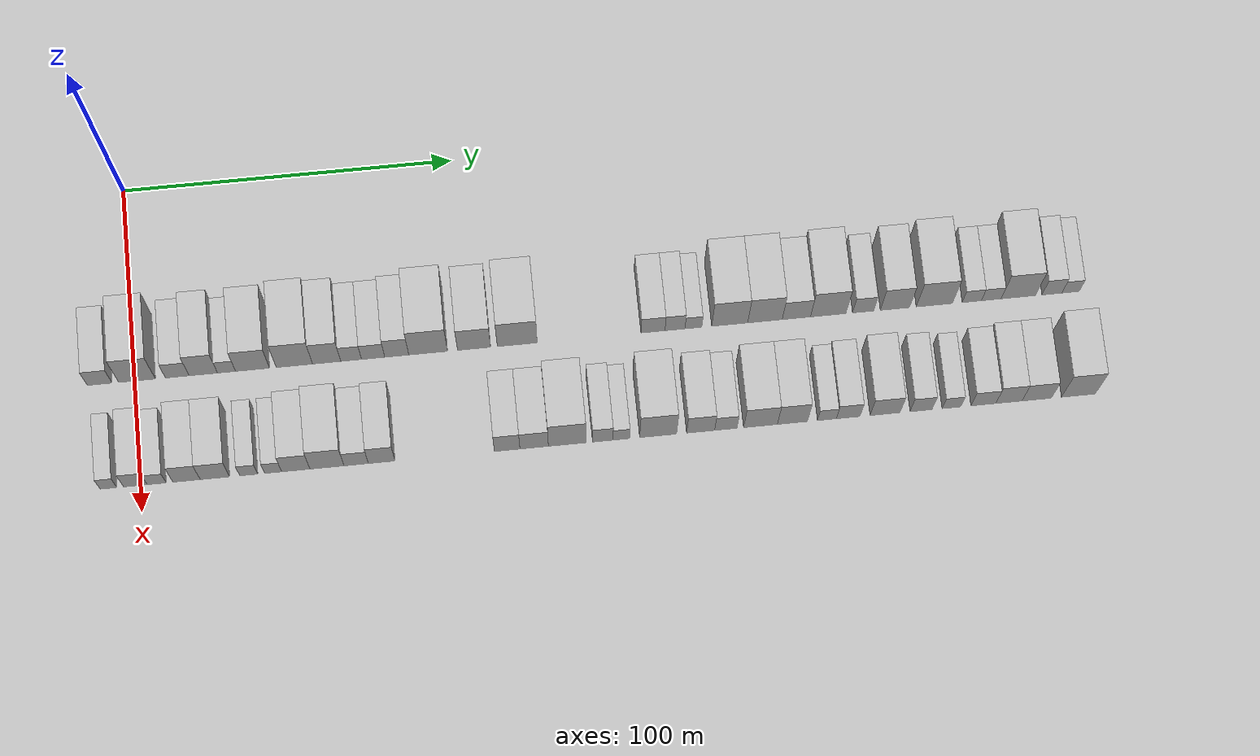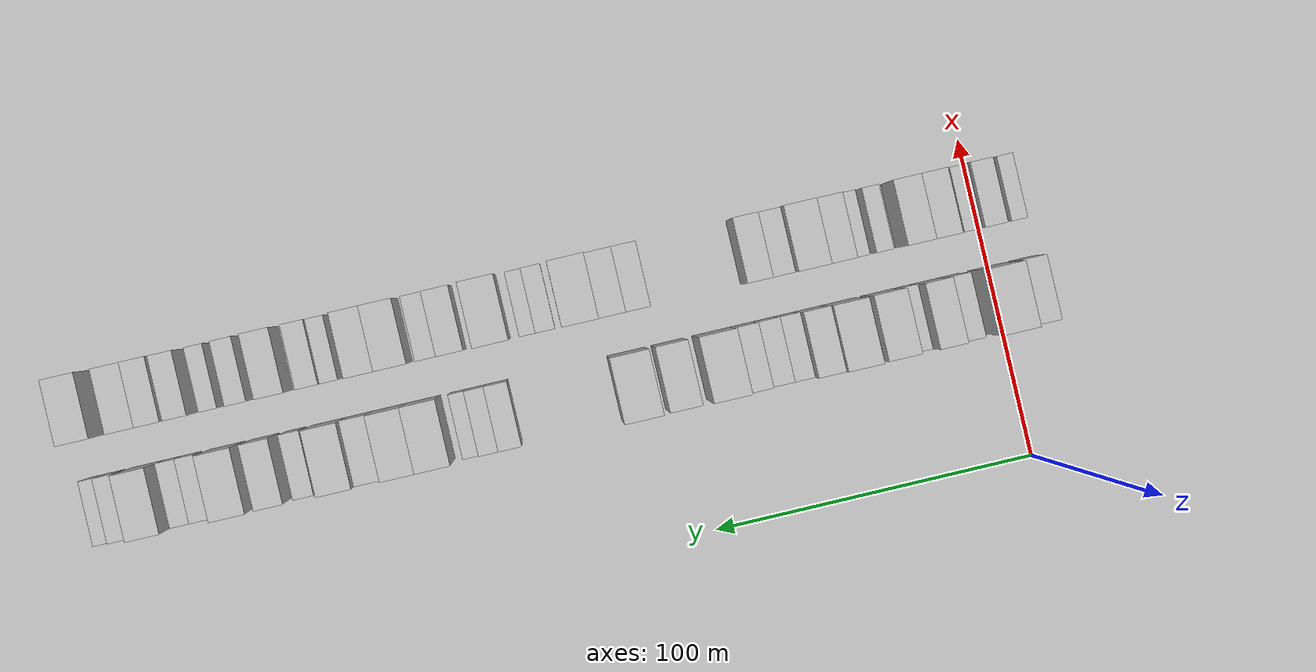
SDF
<sdf version="1.6">
 <world name="default">
  <include><name>ground_plane_1</name><uri>model://HANNAS_ground_plane</uri></include>
  <include>
   <name>ground_plane_2</name>
   <uri>model://HANNAS_ground_plane</uri>
   <pose>100 0 0  0 0 0</pose>
  </include>
  <model name="building_31">
   <static>1</static>
   <pose>50.0000 -10.3079 0 0.000000 0.000000 0.000000</pose>
   <link name="link">
    <pose>0 0 7.50 0 0 0</pose>
    <collision name="collision"><geometry><box><size>20.0000 7.3730 15.0000</size></box></geometry></collision>
    <visual name="visual">
     <cast_shadows>0</cast_shadows>
     <geometry><box><size>20.0000 7.3730 15.0000</size></box></geometry>
     <material>
      <script>
       <uri>model://HANNAS_wall/materials/scripts</uri>
       <uri>model://HANNAS_wall/materials/textures</uri>
       <name>vrc/HANNAS_wall</name>
      </script>
     </material>
    </visual>
   </link>
  </model>
  <model name="building_32">
   <static>1</static>
   <pose>50.0000 0.8469 0 0.000000 0.000000 0.000000</pose>
   <link name="link">
    <pose>0 0 12.00 0 0 0</pose>
    <collision name="collision"><geometry><box><size>20.0000 10.9367 24.0000</size></box></geometry></collision>
    <visual name="visual">
     <cast_shadows>0</cast_shadows>
     <geometry><box><size>20.0000 10.9367 24.0000</size></box></geometry>
     <material>
      <script>
       <uri>model://HANNAS_wall/materials/scripts</uri>
       <uri>model://HANNAS_wall/materials/textures</uri>
       <name>vrc/HANNAS_wall</name>
      </script>
     </material>
    </visual>
   </link>
  </model>
  <model name="building_33">
   <static>1</static>
   <pose>50.0000 12.8434 0 0.000000 0.000000 0.000000</pose>
   <link name="link">
    <pose>0 0 7.50 0 0 0</pose>
    <collision name="collision"><geometry><box><size>20.0000 7.0563 15.0000</size></box></geometry></collision>
    <visual name="visual">
     <cast_shadows>0</cast_shadows>
     <geometry><box><size>20.0000 7.0563 15.0000</size></box></geometry>
     <material>
      <script>
       <uri>model://HANNAS_wall/materials/scripts</uri>
       <uri>model://HANNAS_wall/materials/textures</uri>
       <name>vrc/HANNAS_wall</name>
      </script>
     </material>
    </visual>
   </link>
  </model>
  <model name="building_34">
   <static>1</static>
   <pose>50.0000 20.6297 0 0.000000 0.000000 0.000000</pose>
   <link name="link">
    <pose>0 0 10.50 0 0 0</pose>
    <collision name="collision"><geometry><box><size>20.0000 8.5164 21.0000</size></box></geometry></collision>
    <visual name="visual">
     <cast_shadows>0</cast_shadows>
     <geometry><box><size>20.0000 8.5164 21.0000</size></box></geometry>
     <material>
      <script>
       <uri>model://HANNAS_wall/materials/scripts</uri>
       <uri>model://HANNAS_wall/materials/textures</uri>
       <name>vrc/HANNAS_wall</name>
      </script>
     </material>
    </visual>
   </link>
  </model>
  <model name="building_35">
   <static>1</static>
   <pose>50.0000 27.5853 0 0.000000 0.000000 0.000000</pose>
   <link name="link">
    <pose>0 0 6.00 0 0 0</pose>
    <collision name="collision"><geometry><box><size>20.0000 5.3947 12.0000</size></box></geometry></collision>
    <visual name="visual">
     <cast_shadows>0</cast_shadows>
     <geometry><box><size>20.0000 5.3947 12.0000</size></box></geometry>
     <material>
      <script>
       <uri>model://HANNAS_wall/materials/scripts</uri>
       <uri>model://HANNAS_wall/materials/textures</uri>
       <name>vrc/HANNAS_wall</name>
      </script>
     </material>
    </visual>
   </link>
  </model>
  <model name="building_36">
   <static>1</static>
   <pose>50.0000 35.3652 0 0.000000 0.000000 0.000000</pose>
   <link name="link">
    <pose>0 0 10.50 0 0 0</pose>
    <collision name="collision"><geometry><box><size>20.0000 10.1651 21.0000</size></box></geometry></collision>
    <visual name="visual">
     <cast_shadows>0</cast_shadows>
     <geometry><box><size>20.0000 10.1651 21.0000</size></box></geometry>
     <material>
      <script>
       <uri>model://HANNAS_wall/materials/scripts</uri>
       <uri>model://HANNAS_wall/materials/textures</uri>
       <name>vrc/HANNAS_wall</name>
      </script>
     </material>
    </visual>
   </link>
  </model>
  <model name="building_37">
   <static>1</static>
   <pose>50.0000 47.8778 0 0.000000 0.000000 0.000000</pose>
   <link name="link">
    <pose>0 0 12.00 0 0 0</pose>
    <collision name="collision"><geometry><box><size>20.0000 10.8600 24.0000</size></box></geometry></collision>
    <visual name="visual">
     <cast_shadows>0</cast_shadows>
     <geometry><box><size>20.0000 10.8600 24.0000</size></box></geometry>
     <material>
      <script>
       <uri>model://HANNAS_wall/materials/scripts</uri>
       <uri>model://HANNAS_wall/materials/textures</uri>
       <name>vrc/HANNAS_wall</name>
      </script>
     </material>
    </visual>
   </link>
  </model>
  <model name="building_38">
   <static>1</static>
   <pose>50.0000 57.5322 0 0.000000 0.000000 0.000000</pose>
   <link name="link">
    <pose>0 0 10.50 0 0 0</pose>
    <collision name="collision"><geometry><box><size>20.0000 8.4489 21.0000</size></box></geometry></collision>
    <visual name="visual">
     <cast_shadows>0</cast_shadows>
     <geometry><box><size>20.0000 8.4489 21.0000</size></box></geometry>
     <material>
      <script>
       <uri>model://HANNAS_wall/materials/scripts</uri>
       <uri>model://HANNAS_wall/materials/textures</uri>
       <name>vrc/HANNAS_wall</name>
      </script>
     </material>
    </visual>
   </link>
  </model>
  <model name="building_39">
   <static>1</static>
   <pose>50.0000 64.8607 0 0.000000 0.000000 0.000000</pose>
   <link name="link">
    <pose>0 0 7.50 0 0 0</pose>
    <collision name="collision"><geometry><box><size>20.0000 6.2079 15.0000</size></box></geometry></collision>
    <visual name="visual">
     <cast_shadows>0</cast_shadows>
     <geometry><box><size>20.0000 6.2079 15.0000</size></box></geometry>
     <material>
      <script>
       <uri>model://HANNAS_wall/materials/scripts</uri>
       <uri>model://HANNAS_wall/materials/textures</uri>
       <name>vrc/HANNAS_wall</name>
      </script>
     </material>
    </visual>
   </link>
  </model>
  <model name="building_40">
   <static>1</static>
   <pose>50.0000 71.4527 0 0.000000 0.000000 0.000000</pose>
   <link name="link">
    <pose>0 0 7.50 0 0 0</pose>
    <collision name="collision"><geometry><box><size>20.0000 6.9761 15.0000</size></box></geometry></collision>
    <visual name="visual">
     <cast_shadows>0</cast_shadows>
     <geometry><box><size>20.0000 6.9761 15.0000</size></box></geometry>
     <material>
      <script>
       <uri>model://HANNAS_wall/materials/scripts</uri>
       <uri>model://HANNAS_wall/materials/textures</uri>
       <name>vrc/HANNAS_wall</name>
      </script>
     </material>
    </visual>
   </link>
  </model>
  <model name="building_41">
   <static>1</static>
   <pose>50.0000 78.5423 0 0.000000 0.000000 0.000000</pose>
   <link name="link">
    <pose>0 0 9.00 0 0 0</pose>
    <collision name="collision"><geometry><box><size>20.0000 7.2032 18.0000</size></box></geometry></collision>
    <visual name="visual">
     <cast_shadows>0</cast_shadows>
     <geometry><box><size>20.0000 7.2032 18.0000</size></box></geometry>
     <material>
      <script>
       <uri>model://HANNAS_wall/materials/scripts</uri>
       <uri>model://HANNAS_wall/materials/textures</uri>
       <name>vrc/HANNAS_wall</name>
      </script>
     </material>
    </visual>
   </link>
  </model>
  <model name="building_42">
   <static>1</static>
   <pose>50.0000 87.9648 0 0.000000 0.000000 0.000000</pose>
   <link name="link">
    <pose>0 0 12.00 0 0 0</pose>
    <collision name="collision"><geometry><box><size>20.0000 11.6419 24.0000</size></box></geometry></collision>
    <visual name="visual">
     <cast_shadows>0</cast_shadows>
     <geometry><box><size>20.0000 11.6419 24.0000</size></box></geometry>
     <material>
      <script>
       <uri>model://HANNAS_wall/materials/scripts</uri>
       <uri>model://HANNAS_wall/materials/textures</uri>
       <name>vrc/HANNAS_wall</name>
      </script>
     </material>
    </visual>
   </link>
  </model>
  <model name="building_43">
   <static>1</static>
   <pose>50.0000 101.7564 0 0.000000 0.000000 0.000000</pose>
   <link name="link">
    <pose>0 0 10.50 0 0 0</pose>
    <collision name="collision"><geometry><box><size>20.0000 9.9412 21.0000</size></box></geometry></collision>
    <visual name="visual">
     <cast_shadows>0</cast_shadows>
     <geometry><box><size>20.0000 9.9412 21.0000</size></box></geometry>
     <material>
      <script>
       <uri>model://HANNAS_wall/materials/scripts</uri>
       <uri>model://HANNAS_wall/materials/textures</uri>
       <name>vrc/HANNAS_wall</name>
      </script>
     </material>
    </visual>
   </link>
  </model>
  <model name="building_44">
   <static>1</static>
   <pose>50.0000 114.7146 0 0.000000 0.000000 0.000000</pose>
   <link name="link">
    <pose>0 0 12.00 0 0 0</pose>
    <collision name="collision"><geometry><box><size>20.0000 11.9752 24.0000</size></box></geometry></collision>
    <visual name="visual">
     <cast_shadows>0</cast_shadows>
     <geometry><box><size>20.0000 11.9752 24.0000</size></box></geometry>
     <material>
      <script>
       <uri>model://HANNAS_wall/materials/scripts</uri>
       <uri>model://HANNAS_wall/materials/textures</uri>
       <name>vrc/HANNAS_wall</name>
      </script>
     </material>
    </visual>
   </link>
  </model>
  <model name="building_45">
   <static>1</static>
   <pose>50.0000 155.5697 0 0.000000 0.000000 0.000000</pose>
   <link name="link">
    <pose>0 0 7.50 0 0 0</pose>
    <collision name="collision"><geometry><box><size>20.0000 7.2450 15.0000</size></box></geometry></collision>
    <visual name="visual">
     <cast_shadows>0</cast_shadows>
     <geometry><box><size>20.0000 7.2450 15.0000</size></box></geometry>
     <material>
      <script>
       <uri>model://HANNAS_wall/materials/scripts</uri>
       <uri>model://HANNAS_wall/materials/textures</uri>
       <name>vrc/HANNAS_wall</name>
      </script>
     </material>
    </visual>
   </link>
  </model>
  <model name="building_46">
   <static>1</static>
   <pose>50.0000 162.2053 0 0.000000 0.000000 0.000000</pose>
   <link name="link">
    <pose>0 0 7.50 0 0 0</pose>
    <collision name="collision"><geometry><box><size>20.0000 6.0262 15.0000</size></box></geometry></collision>
    <visual name="visual">
     <cast_shadows>0</cast_shadows>
     <geometry><box><size>20.0000 6.0262 15.0000</size></box></geometry>
     <material>
      <script>
       <uri>model://HANNAS_wall/materials/scripts</uri>
       <uri>model://HANNAS_wall/materials/textures</uri>
       <name>vrc/HANNAS_wall</name>
      </script>
     </material>
    </visual>
   </link>
  </model>
  <model name="building_47">
   <static>1</static>
   <pose>50.0000 167.7446 0 0.000000 0.000000 0.000000</pose>
   <link name="link">
    <pose>0 0 6.00 0 0 0</pose>
    <collision name="collision"><geometry><box><size>20.0000 5.0525 12.0000</size></box></geometry></collision>
    <visual name="visual">
     <cast_shadows>0</cast_shadows>
     <geometry><box><size>20.0000 5.0525 12.0000</size></box></geometry>
     <material>
      <script>
       <uri>model://HANNAS_wall/materials/scripts</uri>
       <uri>model://HANNAS_wall/materials/textures</uri>
       <name>vrc/HANNAS_wall</name>
      </script>
     </material>
    </visual>
   </link>
  </model>
  <model name="building_48">
   <static>1</static>
   <pose>50.0000 178.7050 0 0.000000 0.000000 0.000000</pose>
   <link name="link">
    <pose>0 0 12.00 0 0 0</pose>
    <collision name="collision"><geometry><box><size>20.0000 10.8684 24.0000</size></box></geometry></collision>
    <visual name="visual">
     <cast_shadows>0</cast_shadows>
     <geometry><box><size>20.0000 10.8684 24.0000</size></box></geometry>
     <material>
      <script>
       <uri>model://HANNAS_wall/materials/scripts</uri>
       <uri>model://HANNAS_wall/materials/textures</uri>
       <name>vrc/HANNAS_wall</name>
      </script>
     </material>
    </visual>
   </link>
  </model>
  <model name="building_49">
   <static>1</static>
   <pose>50.0000 189.3468 0 0.000000 0.000000 0.000000</pose>
   <link name="link">
    <pose>0 0 12.00 0 0 0</pose>
    <collision name="collision"><geometry><box><size>20.0000 10.4151 24.0000</size></box></geometry></collision>
    <visual name="visual">
     <cast_shadows>0</cast_shadows>
     <geometry><box><size>20.0000 10.4151 24.0000</size></box></geometry>
     <material>
      <script>
       <uri>model://HANNAS_wall/materials/scripts</uri>
       <uri>model://HANNAS_wall/materials/textures</uri>
       <name>vrc/HANNAS_wall</name>
      </script>
     </material>
    </visual>
   </link>
  </model>
  <model name="building_50">
   <static>1</static>
   <pose>50.0000 198.8236 0 0.000000 0.000000 0.000000</pose>
   <link name="link">
    <pose>0 0 9.00 0 0 0</pose>
    <collision name="collision"><geometry><box><size>20.0000 8.5385 18.0000</size></box></geometry></collision>
    <visual name="visual">
     <cast_shadows>0</cast_shadows>
     <geometry><box><size>20.0000 8.5385 18.0000</size></box></geometry>
     <material>
      <script>
       <uri>model://HANNAS_wall/materials/scripts</uri>
       <uri>model://HANNAS_wall/materials/textures</uri>
       <name>vrc/HANNAS_wall</name>
      </script>
     </material>
    </visual>
   </link>
  </model>
  <model name="building_51">
   <static>1</static>
   <pose>50.0000 208.4541 0 0.000000 0.000000 0.000000</pose>
   <link name="link">
    <pose>0 0 12.00 0 0 0</pose>
    <collision name="collision"><geometry><box><size>20.0000 10.7225 24.0000</size></box></geometry></collision>
    <visual name="visual">
     <cast_shadows>0</cast_shadows>
     <geometry><box><size>20.0000 10.7225 24.0000</size></box></geometry>
     <material>
      <script>
       <uri>model://HANNAS_wall/materials/scripts</uri>
       <uri>model://HANNAS_wall/materials/textures</uri>
       <name>vrc/HANNAS_wall</name>
      </script>
     </material>
    </visual>
   </link>
  </model>
  <model name="building_52">
   <static>1</static>
   <pose>50.0000 219.0162 0 0.000000 0.000000 0.000000</pose>
   <link name="link">
    <pose>0 0 7.50 0 0 0</pose>
    <collision name="collision"><geometry><box><size>20.0000 6.4017 15.0000</size></box></geometry></collision>
    <visual name="visual">
     <cast_shadows>0</cast_shadows>
     <geometry><box><size>20.0000 6.4017 15.0000</size></box></geometry>
     <material>
      <script>
       <uri>model://HANNAS_wall/materials/scripts</uri>
       <uri>model://HANNAS_wall/materials/textures</uri>
       <name>vrc/HANNAS_wall</name>
      </script>
     </material>
    </visual>
   </link>
  </model>
  <model name="building_53">
   <static>1</static>
   <pose>50.0000 228.6528 0 0.000000 0.000000 0.000000</pose>
   <link name="link">
    <pose>0 0 10.50 0 0 0</pose>
    <collision name="collision"><geometry><box><size>20.0000 8.8717 21.0000</size></box></geometry></collision>
    <visual name="visual">
     <cast_shadows>0</cast_shadows>
     <geometry><box><size>20.0000 8.8717 21.0000</size></box></geometry>
     <material>
      <script>
       <uri>model://HANNAS_wall/materials/scripts</uri>
       <uri>model://HANNAS_wall/materials/textures</uri>
       <name>vrc/HANNAS_wall</name>
      </script>
     </material>
    </visual>
   </link>
  </model>
  <model name="building_54">
   <static>1</static>
   <pose>50.0000 240.5531 0 0.000000 0.000000 0.000000</pose>
   <link name="link">
    <pose>0 0 12.00 0 0 0</pose>
    <collision name="collision"><geometry><box><size>20.0000 10.9288 24.0000</size></box></geometry></collision>
    <visual name="visual">
     <cast_shadows>0</cast_shadows>
     <geometry><box><size>20.0000 10.9288 24.0000</size></box></geometry>
     <material>
      <script>
       <uri>model://HANNAS_wall/materials/scripts</uri>
       <uri>model://HANNAS_wall/materials/textures</uri>
       <name>vrc/HANNAS_wall</name>
      </script>
     </material>
    </visual>
   </link>
  </model>
  <model name="building_55">
   <static>1</static>
   <pose>50.0000 251.9315 0 0.000000 0.000000 0.000000</pose>
   <link name="link">
    <pose>0 0 6.00 0 0 0</pose>
    <collision name="collision"><geometry><box><size>20.0000 5.8281 12.0000</size></box></geometry></collision>
    <visual name="visual">
     <cast_shadows>0</cast_shadows>
     <geometry><box><size>20.0000 5.8281 12.0000</size></box></geometry>
     <material>
      <script>
       <uri>model://HANNAS_wall/materials/scripts</uri>
       <uri>model://HANNAS_wall/materials/textures</uri>
       <name>vrc/HANNAS_wall</name>
      </script>
     </material>
    </visual>
   </link>
  </model>
  <model name="building_56">
   <static>1</static>
   <pose>50.0000 257.8235 0 0.000000 0.000000 0.000000</pose>
   <link name="link">
    <pose>0 0 6.00 0 0 0</pose>
    <collision name="collision"><geometry><box><size>20.0000 5.9559 12.0000</size></box></geometry></collision>
    <visual name="visual">
     <cast_shadows>0</cast_shadows>
     <geometry><box><size>20.0000 5.9559 12.0000</size></box></geometry>
     <material>
      <script>
       <uri>model://HANNAS_wall/materials/scripts</uri>
       <uri>model://HANNAS_wall/materials/textures</uri>
       <name>vrc/HANNAS_wall</name>
      </script>
     </material>
    </visual>
   </link>
  </model>
  <model name="building_57">
   <static>1</static>
   <pose>50.0000 266.0088 0 0.000000 0.000000 0.000000</pose>
   <link name="link">
    <pose>0 0 12.00 0 0 0</pose>
    <collision name="collision"><geometry><box><size>20.0000 10.4145 24.0000</size></box></geometry></collision>
    <visual name="visual">
     <cast_shadows>0</cast_shadows>
     <geometry><box><size>20.0000 10.4145 24.0000</size></box></geometry>
     <material>
      <script>
       <uri>model://HANNAS_wall/materials/scripts</uri>
       <uri>model://HANNAS_wall/materials/textures</uri>
       <name>vrc/HANNAS_wall</name>
      </script>
     </material>
    </visual>
   </link>
  </model>
  <model name="building_58">
   <static>1</static>
   <pose>50.0000 276.2362 0 0.000000 0.000000 0.000000</pose>
   <link name="link">
    <pose>0 0 7.50 0 0 0</pose>
    <collision name="collision"><geometry><box><size>20.0000 6.0404 15.0000</size></box></geometry></collision>
    <visual name="visual">
     <cast_shadows>0</cast_shadows>
     <geometry><box><size>20.0000 6.0404 15.0000</size></box></geometry>
     <material>
      <script>
       <uri>model://HANNAS_wall/materials/scripts</uri>
       <uri>model://HANNAS_wall/materials/textures</uri>
       <name>vrc/HANNAS_wall</name>
      </script>
     </material>
    </visual>
   </link>
  </model>
  <model name="building_59">
   <static>1</static>
   <pose>50.0000 281.8988 0 0.000000 0.000000 0.000000</pose>
   <link name="link">
    <pose>0 0 6.00 0 0 0</pose>
    <collision name="collision"><geometry><box><size>20.0000 5.2848 12.0000</size></box></geometry></collision>
    <visual name="visual">
     <cast_shadows>0</cast_shadows>
     <geometry><box><size>20.0000 5.2848 12.0000</size></box></geometry>
     <material>
      <script>
       <uri>model://HANNAS_wall/materials/scripts</uri>
       <uri>model://HANNAS_wall/materials/textures</uri>
       <name>vrc/HANNAS_wall</name>
      </script>
     </material>
    </visual>
   </link>
  </model>
  <model name="building_90">
   <static>1</static>
   <pose>82.0000 -9.3966 0 0.000000 0.000000 0.000000</pose>
   <link name="link">
    <pose>0 0 6.00 0 0 0</pose>
    <collision name="collision"><geometry><box><size>20.0000 4.9423 12.0000</size></box></geometry></collision>
    <visual name="visual">
     <cast_shadows>0</cast_shadows>
     <geometry><box><size>20.0000 4.9423 12.0000</size></box></geometry>
     <material>
      <script>
       <uri>model://HANNAS_wall/materials/scripts</uri>
       <uri>model://HANNAS_wall/materials/textures</uri>
       <name>vrc/HANNAS_wall</name>
      </script>
     </material>
    </visual>
   </link>
  </model>
  <model name="building_91">
   <static>1</static>
   <pose>82.0000 -1.4251 0 0.000000 0.000000 0.000000</pose>
   <link name="link">
    <pose>0 0 7.50 0 0 0</pose>
    <collision name="collision"><geometry><box><size>20.0000 7.0005 15.0000</size></box></geometry></collision>
    <visual name="visual">
     <cast_shadows>0</cast_shadows>
     <geometry><box><size>20.0000 7.0005 15.0000</size></box></geometry>
     <material>
      <script>
       <uri>model://HANNAS_wall/materials/scripts</uri>
       <uri>model://HANNAS_wall/materials/textures</uri>
       <name>vrc/HANNAS_wall</name>
      </script>
     </material>
    </visual>
   </link>
  </model>
  <model name="building_92">
   <static>1</static>
   <pose>82.0000 4.8660 0 0.000000 0.000000 0.000000</pose>
   <link name="link">
    <pose>0 0 6.00 0 0 0</pose>
    <collision name="collision"><geometry><box><size>20.0000 5.5818 12.0000</size></box></geometry></collision>
    <visual name="visual">
     <cast_shadows>0</cast_shadows>
     <geometry><box><size>20.0000 5.5818 12.0000</size></box></geometry>
     <material>
      <script>
       <uri>model://HANNAS_wall/materials/scripts</uri>
       <uri>model://HANNAS_wall/materials/textures</uri>
       <name>vrc/HANNAS_wall</name>
      </script>
     </material>
    </visual>
   </link>
  </model>
  <model name="building_93">
   <static>1</static>
   <pose>82.0000 13.6942 0 0.000000 0.000000 0.000000</pose>
   <link name="link">
    <pose>0 0 9.00 0 0 0</pose>
    <collision name="collision"><geometry><box><size>20.0000 8.0745 18.0000</size></box></geometry></collision>
    <visual name="visual">
     <cast_shadows>0</cast_shadows>
     <geometry><box><size>20.0000 8.0745 18.0000</size></box></geometry>
     <material>
      <script>
       <uri>model://HANNAS_wall/materials/scripts</uri>
       <uri>model://HANNAS_wall/materials/textures</uri>
       <name>vrc/HANNAS_wall</name>
      </script>
     </material>
    </visual>
   </link>
  </model>
  <model name="building_94">
   <static>1</static>
   <pose>82.0000 22.0796 0 0.000000 0.000000 0.000000</pose>
   <link name="link">
    <pose>0 0 9.00 0 0 0</pose>
    <collision name="collision"><geometry><box><size>20.0000 8.6964 18.0000</size></box></geometry></collision>
    <visual name="visual">
     <cast_shadows>0</cast_shadows>
     <geometry><box><size>20.0000 8.6964 18.0000</size></box></geometry>
     <material>
      <script>
       <uri>model://HANNAS_wall/materials/scripts</uri>
       <uri>model://HANNAS_wall/materials/textures</uri>
       <name>vrc/HANNAS_wall</name>
      </script>
     </material>
    </visual>
   </link>
  </model>
  <model name="building_95">
   <static>1</static>
   <pose>82.0000 32.1022 0 0.000000 0.000000 0.000000</pose>
   <link name="link">
    <pose>0 0 6.00 0 0 0</pose>
    <collision name="collision"><geometry><box><size>20.0000 5.3489 12.0000</size></box></geometry></collision>
    <visual name="visual">
     <cast_shadows>0</cast_shadows>
     <geometry><box><size>20.0000 5.3489 12.0000</size></box></geometry>
     <material>
      <script>
       <uri>model://HANNAS_wall/materials/scripts</uri>
       <uri>model://HANNAS_wall/materials/textures</uri>
       <name>vrc/HANNAS_wall</name>
      </script>
     </material>
    </visual>
   </link>
  </model>
  <model name="building_96">
   <static>1</static>
   <pose>82.0000 39.3089 0 0.000000 0.000000 0.000000</pose>
   <link name="link">
    <pose>0 0 6.00 0 0 0</pose>
    <collision name="collision"><geometry><box><size>20.0000 5.0645 12.0000</size></box></geometry></collision>
    <visual name="visual">
     <cast_shadows>0</cast_shadows>
     <geometry><box><size>20.0000 5.0645 12.0000</size></box></geometry>
     <material>
      <script>
       <uri>model://HANNAS_wall/materials/scripts</uri>
       <uri>model://HANNAS_wall/materials/textures</uri>
       <name>vrc/HANNAS_wall</name>
      </script>
     </material>
    </visual>
   </link>
  </model>
  <model name="building_97">
   <static>1</static>
   <pose>82.0000 46.0332 0 0.000000 0.000000 0.000000</pose>
   <link name="link">
    <pose>0 0 9.00 0 0 0</pose>
    <collision name="collision"><geometry><box><size>20.0000 8.3841 18.0000</size></box></geometry></collision>
    <visual name="visual">
     <cast_shadows>0</cast_shadows>
     <geometry><box><size>20.0000 8.3841 18.0000</size></box></geometry>
     <material>
      <script>
       <uri>model://HANNAS_wall/materials/scripts</uri>
       <uri>model://HANNAS_wall/materials/textures</uri>
       <name>vrc/HANNAS_wall</name>
      </script>
     </material>
    </visual>
   </link>
  </model>
  <model name="building_98">
   <static>1</static>
   <pose>82.0000 55.2792 0 0.000000 0.000000 0.000000</pose>
   <link name="link">
    <pose>0 0 10.50 0 0 0</pose>
    <collision name="collision"><geometry><box><size>20.0000 10.1079 21.0000</size></box></geometry></collision>
    <visual name="visual">
     <cast_shadows>0</cast_shadows>
     <geometry><box><size>20.0000 10.1079 21.0000</size></box></geometry>
     <material>
      <script>
       <uri>model://HANNAS_wall/materials/scripts</uri>
       <uri>model://HANNAS_wall/materials/textures</uri>
       <name>vrc/HANNAS_wall</name>
      </script>
     </material>
    </visual>
   </link>
  </model>
  <model name="building_99">
   <static>1</static>
   <pose>82.0000 63.9472 0 0.000000 0.000000 0.000000</pose>
   <link name="link">
    <pose>0 0 7.50 0 0 0</pose>
    <collision name="collision"><geometry><box><size>20.0000 7.2280 15.0000</size></box></geometry></collision>
    <visual name="visual">
     <cast_shadows>0</cast_shadows>
     <geometry><box><size>20.0000 7.2280 15.0000</size></box></geometry>
     <material>
      <script>
       <uri>model://HANNAS_wall/materials/scripts</uri>
       <uri>model://HANNAS_wall/materials/textures</uri>
       <name>vrc/HANNAS_wall</name>
      </script>
     </material>
    </visual>
   </link>
  </model>
  <model name="building_100">
   <static>1</static>
   <pose>82.0000 71.5030 0 0.000000 0.000000 0.000000</pose>
   <link name="link">
    <pose>0 0 9.00 0 0 0</pose>
    <collision name="collision"><geometry><box><size>20.0000 7.8837 18.0000</size></box></geometry></collision>
    <visual name="visual">
     <cast_shadows>0</cast_shadows>
     <geometry><box><size>20.0000 7.8837 18.0000</size></box></geometry>
     <material>
      <script>
       <uri>model://HANNAS_wall/materials/scripts</uri>
       <uri>model://HANNAS_wall/materials/textures</uri>
       <name>vrc/HANNAS_wall</name>
      </script>
     </material>
    </visual>
   </link>
  </model>
  <model name="building_101">
   <static>1</static>
   <pose>82.0000 108.8107 0 0.000000 0.000000 0.000000</pose>
   <link name="link">
    <pose>0 0 9.00 0 0 0</pose>
    <collision name="collision"><geometry><box><size>20.0000 7.5772 18.0000</size></box></geometry></collision>
    <visual name="visual">
     <cast_shadows>0</cast_shadows>
     <geometry><box><size>20.0000 7.5772 18.0000</size></box></geometry>
     <material>
      <script>
       <uri>model://HANNAS_wall/materials/scripts</uri>
       <uri>model://HANNAS_wall/materials/textures</uri>
       <name>vrc/HANNAS_wall</name>
      </script>
     </material>
    </visual>
   </link>
  </model>
  <model name="building_102">
   <static>1</static>
   <pose>82.0000 116.8280 0 0.000000 0.000000 0.000000</pose>
   <link name="link">
    <pose>0 0 9.00 0 0 0</pose>
    <collision name="collision"><geometry><box><size>20.0000 8.4575 18.0000</size></box></geometry></collision>
    <visual name="visual">
     <cast_shadows>0</cast_shadows>
     <geometry><box><size>20.0000 8.4575 18.0000</size></box></geometry>
     <material>
      <script>
       <uri>model://HANNAS_wall/materials/scripts</uri>
       <uri>model://HANNAS_wall/materials/textures</uri>
       <name>vrc/HANNAS_wall</name>
      </script>
     </material>
    </visual>
   </link>
  </model>
  <model name="building_103">
   <static>1</static>
   <pose>82.0000 126.6372 0 0.000000 0.000000 0.000000</pose>
   <link name="link">
    <pose>0 0 12.00 0 0 0</pose>
    <collision name="collision"><geometry><box><size>20.0000 11.1607 24.0000</size></box></geometry></collision>
    <visual name="visual">
     <cast_shadows>0</cast_shadows>
     <geometry><box><size>20.0000 11.1607 24.0000</size></box></geometry>
     <material>
      <script>
       <uri>model://HANNAS_wall/materials/scripts</uri>
       <uri>model://HANNAS_wall/materials/textures</uri>
       <name>vrc/HANNAS_wall</name>
      </script>
     </material>
    </visual>
   </link>
  </model>
  <model name="building_104">
   <static>1</static>
   <pose>82.0000 137.2559 0 0.000000 0.000000 0.000000</pose>
   <link name="link">
    <pose>0 0 7.50 0 0 0</pose>
    <collision name="collision"><geometry><box><size>20.0000 6.0768 15.0000</size></box></geometry></collision>
    <visual name="visual">
     <cast_shadows>0</cast_shadows>
     <geometry><box><size>20.0000 6.0768 15.0000</size></box></geometry>
     <material>
      <script>
       <uri>model://HANNAS_wall/materials/scripts</uri>
       <uri>model://HANNAS_wall/materials/textures</uri>
       <name>vrc/HANNAS_wall</name>
      </script>
     </material>
    </visual>
   </link>
  </model>
  <model name="building_105">
   <static>1</static>
   <pose>82.0000 142.7807 0 0.000000 0.000000 0.000000</pose>
   <link name="link">
    <pose>0 0 6.00 0 0 0</pose>
    <collision name="collision"><geometry><box><size>20.0000 4.9728 12.0000</size></box></geometry></collision>
    <visual name="visual">
     <cast_shadows>0</cast_shadows>
     <geometry><box><size>20.0000 4.9728 12.0000</size></box></geometry>
     <material>
      <script>
       <uri>model://HANNAS_wall/materials/scripts</uri>
       <uri>model://HANNAS_wall/materials/textures</uri>
       <name>vrc/HANNAS_wall</name>
      </script>
     </material>
    </visual>
   </link>
  </model>
  <model name="building_106">
   <static>1</static>
   <pose>82.0000 153.7696 0 0.000000 0.000000 0.000000</pose>
   <link name="link">
    <pose>0 0 12.00 0 0 0</pose>
    <collision name="collision"><geometry><box><size>20.0000 11.0049 24.0000</size></box></geometry></collision>
    <visual name="visual">
     <cast_shadows>0</cast_shadows>
     <geometry><box><size>20.0000 11.0049 24.0000</size></box></geometry>
     <material>
      <script>
       <uri>model://HANNAS_wall/materials/scripts</uri>
       <uri>model://HANNAS_wall/materials/textures</uri>
       <name>vrc/HANNAS_wall</name>
      </script>
     </material>
    </visual>
   </link>
  </model>
  <model name="building_107">
   <static>1</static>
   <pose>82.0000 166.4532 0 0.000000 0.000000 0.000000</pose>
   <link name="link">
    <pose>0 0 9.00 0 0 0</pose>
    <collision name="collision"><geometry><box><size>20.0000 8.3625 18.0000</size></box></geometry></collision>
    <visual name="visual">
     <cast_shadows>0</cast_shadows>
     <geometry><box><size>20.0000 8.3625 18.0000</size></box></geometry>
     <material>
      <script>
       <uri>model://HANNAS_wall/materials/scripts</uri>
       <uri>model://HANNAS_wall/materials/textures</uri>
       <name>vrc/HANNAS_wall</name>
      </script>
     </material>
    </visual>
   </link>
  </model>
  <model name="building_108">
   <static>1</static>
   <pose>82.0000 173.9625 0 0.000000 0.000000 0.000000</pose>
   <link name="link">
    <pose>0 0 7.50 0 0 0</pose>
    <collision name="collision"><geometry><box><size>20.0000 6.6560 15.0000</size></box></geometry></collision>
    <visual name="visual">
     <cast_shadows>0</cast_shadows>
     <geometry><box><size>20.0000 6.6560 15.0000</size></box></geometry>
     <material>
      <script>
       <uri>model://HANNAS_wall/materials/scripts</uri>
       <uri>model://HANNAS_wall/materials/textures</uri>
       <name>vrc/HANNAS_wall</name>
      </script>
     </material>
    </visual>
   </link>
  </model>
  <model name="building_109">
   <static>1</static>
   <pose>82.0000 184.3375 0 0.000000 0.000000 0.000000</pose>
   <link name="link">
    <pose>0 0 10.50 0 0 0</pose>
    <collision name="collision"><geometry><box><size>20.0000 10.0942 21.0000</size></box></geometry></collision>
    <visual name="visual">
     <cast_shadows>0</cast_shadows>
     <geometry><box><size>20.0000 10.0942 21.0000</size></box></geometry>
     <material>
      <script>
       <uri>model://HANNAS_wall/materials/scripts</uri>
       <uri>model://HANNAS_wall/materials/textures</uri>
       <name>vrc/HANNAS_wall</name>
      </script>
     </material>
    </visual>
   </link>
  </model>
  <model name="building_110">
   <static>1</static>
   <pose>82.0000 193.8829 0 0.000000 0.000000 0.000000</pose>
   <link name="link">
    <pose>0 0 10.50 0 0 0</pose>
    <collision name="collision"><geometry><box><size>20.0000 8.9965 21.0000</size></box></geometry></collision>
    <visual name="visual">
     <cast_shadows>0</cast_shadows>
     <geometry><box><size>20.0000 8.9965 21.0000</size></box></geometry>
     <material>
      <script>
       <uri>model://HANNAS_wall/materials/scripts</uri>
       <uri>model://HANNAS_wall/materials/textures</uri>
       <name>vrc/HANNAS_wall</name>
      </script>
     </material>
    </visual>
   </link>
  </model>
  <model name="building_111">
   <static>1</static>
   <pose>82.0000 204.1977 0 0.000000 0.000000 0.000000</pose>
   <link name="link">
    <pose>0 0 6.00 0 0 0</pose>
    <collision name="collision"><geometry><box><size>20.0000 5.6331 12.0000</size></box></geometry></collision>
    <visual name="visual">
     <cast_shadows>0</cast_shadows>
     <geometry><box><size>20.0000 5.6331 12.0000</size></box></geometry>
     <material>
      <script>
       <uri>model://HANNAS_wall/materials/scripts</uri>
       <uri>model://HANNAS_wall/materials/textures</uri>
       <name>vrc/HANNAS_wall</name>
      </script>
     </material>
    </visual>
   </link>
  </model>
  <model name="building_112">
   <static>1</static>
   <pose>82.0000 210.5671 0 0.000000 0.000000 0.000000</pose>
   <link name="link">
    <pose>0 0 7.50 0 0 0</pose>
    <collision name="collision"><geometry><box><size>20.0000 7.1056 15.0000</size></box></geometry></collision>
    <visual name="visual">
     <cast_shadows>0</cast_shadows>
     <geometry><box><size>20.0000 7.1056 15.0000</size></box></geometry>
     <material>
      <script>
       <uri>model://HANNAS_wall/materials/scripts</uri>
       <uri>model://HANNAS_wall/materials/textures</uri>
       <name>vrc/HANNAS_wall</name>
      </script>
     </material>
    </visual>
   </link>
  </model>
  <model name="building_113">
   <static>1</static>
   <pose>82.0000 221.6136 0 0.000000 0.000000 0.000000</pose>
   <link name="link">
    <pose>0 0 9.00 0 0 0</pose>
    <collision name="collision"><geometry><box><size>20.0000 8.9875 18.0000</size></box></geometry></collision>
    <visual name="visual">
     <cast_shadows>0</cast_shadows>
     <geometry><box><size>20.0000 8.9875 18.0000</size></box></geometry>
     <material>
      <script>
       <uri>model://HANNAS_wall/materials/scripts</uri>
       <uri>model://HANNAS_wall/materials/textures</uri>
       <name>vrc/HANNAS_wall</name>
      </script>
     </material>
    </visual>
   </link>
  </model>
  <model name="building_114">
   <static>1</static>
   <pose>82.0000 232.4111 0 0.000000 0.000000 0.000000</pose>
   <link name="link">
    <pose>0 0 7.50 0 0 0</pose>
    <collision name="collision"><geometry><box><size>20.0000 6.6075 15.0000</size></box></geometry></collision>
    <visual name="visual">
     <cast_shadows>0</cast_shadows>
     <geometry><box><size>20.0000 6.6075 15.0000</size></box></geometry>
     <material>
      <script>
       <uri>model://HANNAS_wall/materials/scripts</uri>
       <uri>model://HANNAS_wall/materials/textures</uri>
       <name>vrc/HANNAS_wall</name>
      </script>
     </material>
    </visual>
   </link>
  </model>
  <model name="building_115">
   <static>1</static>
   <pose>82.0000 241.5431 0 0.000000 0.000000 0.000000</pose>
   <link name="link">
    <pose>0 0 6.00 0 0 0</pose>
    <collision name="collision"><geometry><box><size>20.0000 5.6565 12.0000</size></box></geometry></collision>
    <visual name="visual">
     <cast_shadows>0</cast_shadows>
     <geometry><box><size>20.0000 5.6565 12.0000</size></box></geometry>
     <material>
      <script>
       <uri>model://HANNAS_wall/materials/scripts</uri>
       <uri>model://HANNAS_wall/materials/textures</uri>
       <name>vrc/HANNAS_wall</name>
      </script>
     </material>
    </visual>
   </link>
  </model>
  <model name="building_116">
   <static>1</static>
   <pose>82.0000 251.1039 0 0.000000 0.000000 0.000000</pose>
   <link name="link">
    <pose>0 0 7.50 0 0 0</pose>
    <collision name="collision"><geometry><box><size>20.0000 7.4650 15.0000</size></box></geometry></collision>
    <visual name="visual">
     <cast_shadows>0</cast_shadows>
     <geometry><box><size>20.0000 7.4650 15.0000</size></box></geometry>
     <material>
      <script>
       <uri>model://HANNAS_wall/materials/scripts</uri>
       <uri>model://HANNAS_wall/materials/textures</uri>
       <name>vrc/HANNAS_wall</name>
      </script>
     </material>
    </visual>
   </link>
  </model>
  <model name="building_117">
   <static>1</static>
   <pose>82.0000 258.7687 0 0.000000 0.000000 0.000000</pose>
   <link name="link">
    <pose>0 0 9.00 0 0 0</pose>
    <collision name="collision"><geometry><box><size>20.0000 7.8647 18.0000</size></box></geometry></collision>
    <visual name="visual">
     <cast_shadows>0</cast_shadows>
     <geometry><box><size>20.0000 7.8647 18.0000</size></box></geometry>
     <material>
      <script>
       <uri>model://HANNAS_wall/materials/scripts</uri>
       <uri>model://HANNAS_wall/materials/textures</uri>
       <name>vrc/HANNAS_wall</name>
      </script>
     </material>
    </visual>
   </link>
  </model>
  <model name="building_118">
   <static>1</static>
   <pose>82.0000 267.1397 0 0.000000 0.000000 0.000000</pose>
   <link name="link">
    <pose>0 0 9.00 0 0 0</pose>
    <collision name="collision"><geometry><box><size>20.0000 8.8772 18.0000</size></box></geometry></collision>
    <visual name="visual">
     <cast_shadows>0</cast_shadows>
     <geometry><box><size>20.0000 8.8772 18.0000</size></box></geometry>
     <material>
      <script>
       <uri>model://HANNAS_wall/materials/scripts</uri>
       <uri>model://HANNAS_wall/materials/textures</uri>
       <name>vrc/HANNAS_wall</name>
      </script>
     </material>
    </visual>
   </link>
  </model>
  <model name="building_119">
   <static>1</static>
   <pose>82.0000 279.6615 0 0.000000 0.000000 0.000000</pose>
   <link name="link">
    <pose>0 0 12.00 0 0 0</pose>
    <collision name="collision"><geometry><box><size>20.0000 10.1665 24.0000</size></box></geometry></collision>
    <visual name="visual">
     <cast_shadows>0</cast_shadows>
     <geometry><box><size>20.0000 10.1665 24.0000</size></box></geometry>
     <material>
      <script>
       <uri>model://HANNAS_wall/materials/scripts</uri>
       <uri>model://HANNAS_wall/materials/textures</uri>
       <name>vrc/HANNAS_wall</name>
      </script>
     </material>
    </visual>
   </link>
  </model>
 </world>
</sdf>
